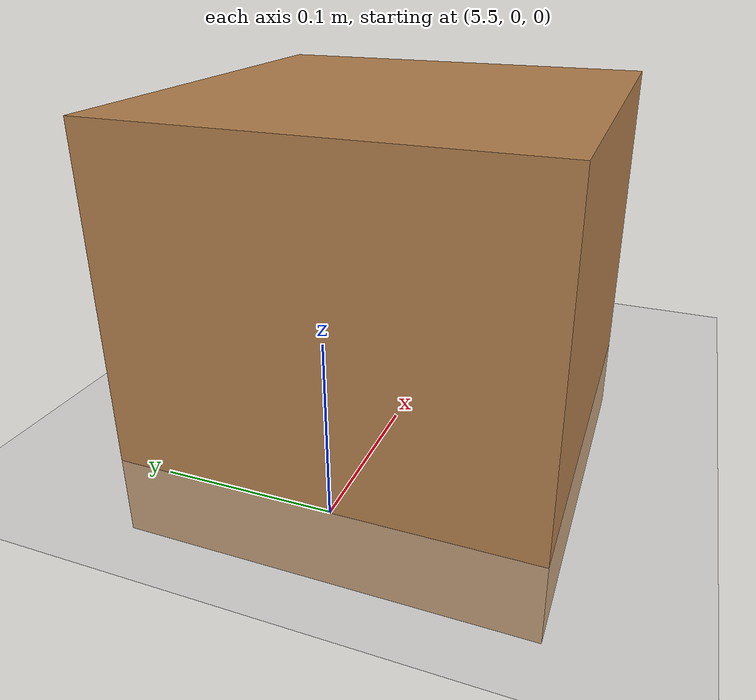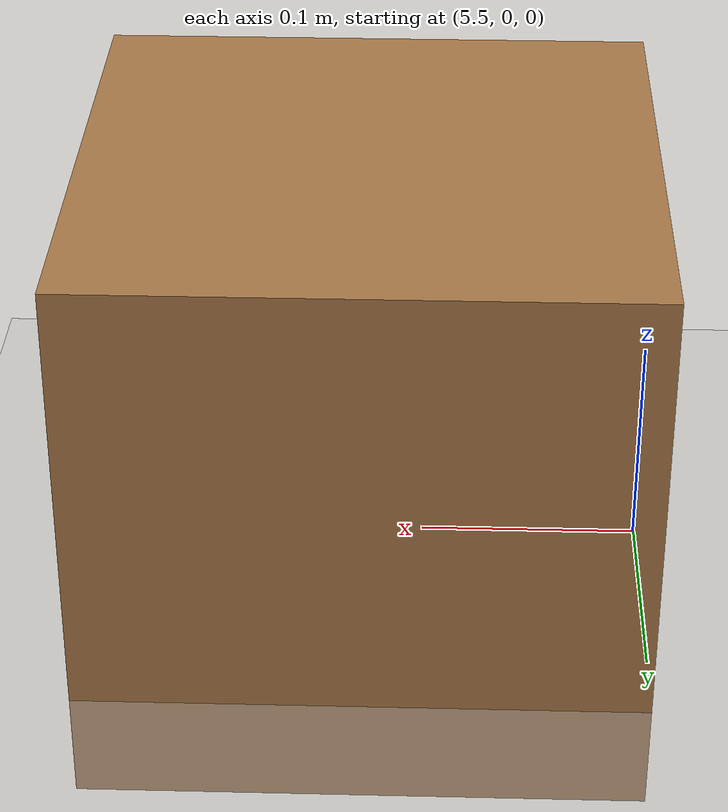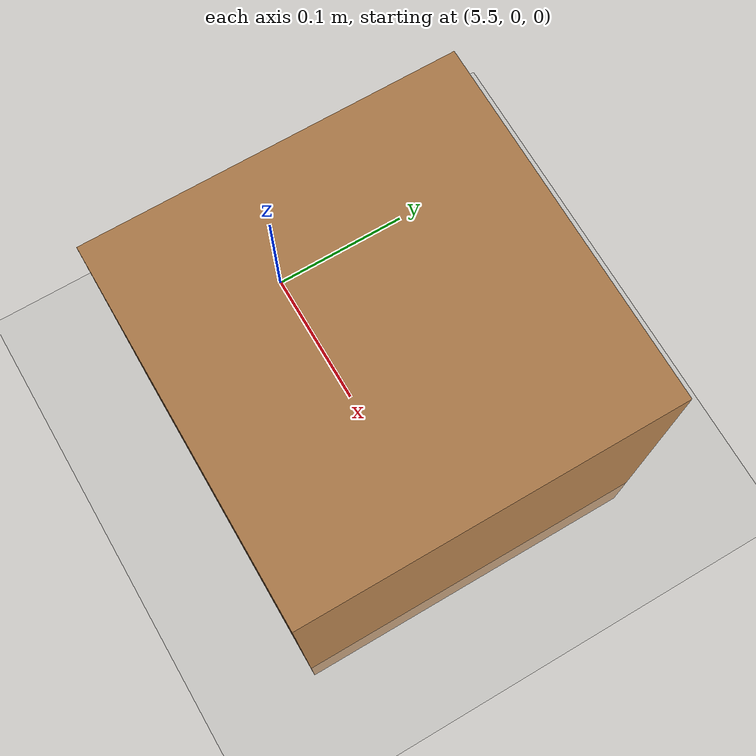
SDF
<?xml version="1.0" ?>
<sdf version="1.5">
    <world name="default">

        <physics type="ode">
        <max_step_size>0.001</max_step_size>
        <real_time_factor>1</real_time_factor>
        <real_time_update_rate>1000</real_time_update_rate>
        <gravity>0 0 -9.81</gravity>
            <ode>
                <solver>
                <type>quick</type>
                <iters>50</iters>
                <sor>1.3</sor>
                </solver>
                <constraints>
                <cfm>0.0</cfm>
                <erp>0.2</erp>
                <contact_max_correcting_vel>10.0</contact_max_correcting_vel>
                <contact_surface_layer>0.001</contact_surface_layer>
                </constraints>
            </ode>
        </physics>

        <scene>
        <sky>
            <clouds>
                <speed>12</speed>
            </clouds>
        </sky>
        </scene>
        <!-- A global light source -->
        <include>
            <uri>model://sun</uri>
        </include>
        <!-- A ground plane -->
        <include>
            <uri>model://ground_plane</uri>
        </include>
        <!-- environment blocks, obstacles or stairs -->

    <model name='stairs'>
    <pose frame=''>6 0.009 0 0 -0 0</pose>
    <link name='Stairs_1'>
      <visual name='Stairs_1_Visual_0'>
        <pose frame=''>-0.375 -0 0.075 0 -0 1.5708</pose>
        <geometry>
          <box>
            <size>.25 .25 0.25</size>
          </box>
        </geometry>
        <material>
          <script>
            <uri>file://media/materials/scripts/gazebo.material</uri>
            <name>Gazebo/Wood</name>
          </script>
          <ambient>1 1 1 1</ambient>
        </material>
        <meta>
          <layer>0</layer>
        </meta>
      </visual>
      <collision name='Stairs_1_Collision_0'>
        <geometry>
          <box>
            <size>.25 .25 0.25</size>
          </box>
        </geometry>
        <pose frame=''>-0.375 -0 0.075 0 -0 1.5708</pose>
      </collision>
    </link>
    <static>1</static>
  </model>

    </world>
</sdf>
